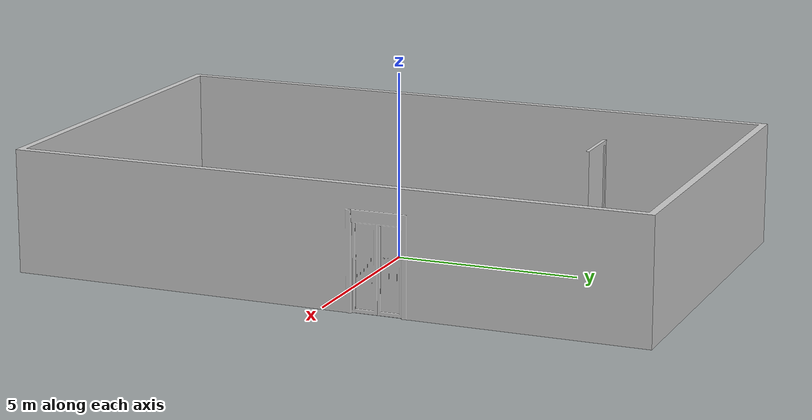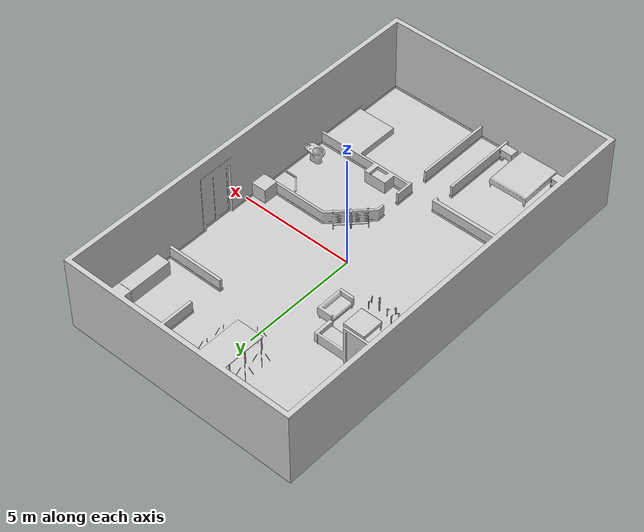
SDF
<?xml version="1.0" ?>
<sdf version="1.4">
  <world name="default">
    <include>
      <uri>model://wood_groundplane</uri>
    </include>
    <include>
      <uri>model://sun</uri>
    </include>
    <include>
      <uri>model://test_room</uri>
      <name>world</name>
      <pose>0 0 0 0 0 1.5707963</pose>
    </include>
  </world>
</sdf>

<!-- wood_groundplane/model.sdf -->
<sdf version="1.5">
  <model name="wood_groundplane">
    <static>true</static>
    <link name="link">
      <collision name="collision">
        <geometry>
          <plane>
            <normal>0 0 1</normal>
            <size>10.02 17</size>
          </plane>
        </geometry>
        <surface>
          <friction>
            <ode>
              <mu>100</mu>
              <mu2>50</mu2>
            </ode>
          </friction>
        </surface>
      </collision>
      <visual name="visual">
        <cast_shadows>false</cast_shadows>
        <geometry>
          <plane>
            <normal>0 0 1</normal>
            <size>10.02 17</size>
          </plane>
        </geometry>
        <material>
          <script>
            <uri>model://wood_groundplane/materials/scripts</uri>
            <uri>model://wood_groundplane/materials/textures</uri>
            <name>wood_groundplane/Image </name>
          </script>
        </material>
      </visual>
    </link>
  </model>
</sdf>

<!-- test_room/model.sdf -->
<sdf version="1.4">
  <model name="test_room">
    <link name="link">
      <inertial>
        <mass>150</mass>
        <inertia>
          <ixx>0.0</ixx>
          <ixy>0.0</ixy>
          <ixz>0.0</ixz>
          <iyy>0.0</iyy>
          <iyz>0.0</iyz>
          <izz>0.0</izz>
        </inertia>
      </inertial>
      <collision name="collision">
        <pose>0 0 0 0 0 0</pose>
        <geometry>
          <mesh>
            <uri>model://test_room/TestRoomLite.dae</uri>
          </mesh>
        </geometry>
      </collision>
      <visual name="visual">
        <pose>0 0 0 0 0 0</pose>
        <geometry>
          <mesh>
            <uri>model://test_room/TestRoomLite.dae</uri>
          </mesh>
        </geometry>
      </visual>
    </link>
    <static>1</static>
  </model>
</sdf>
